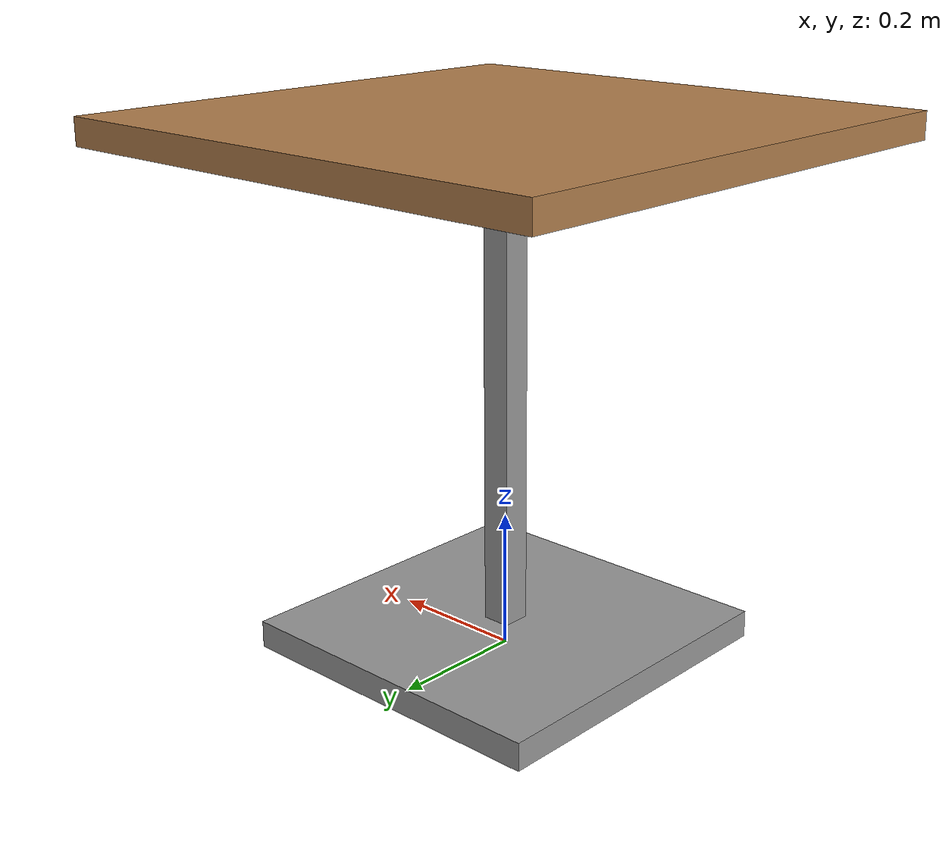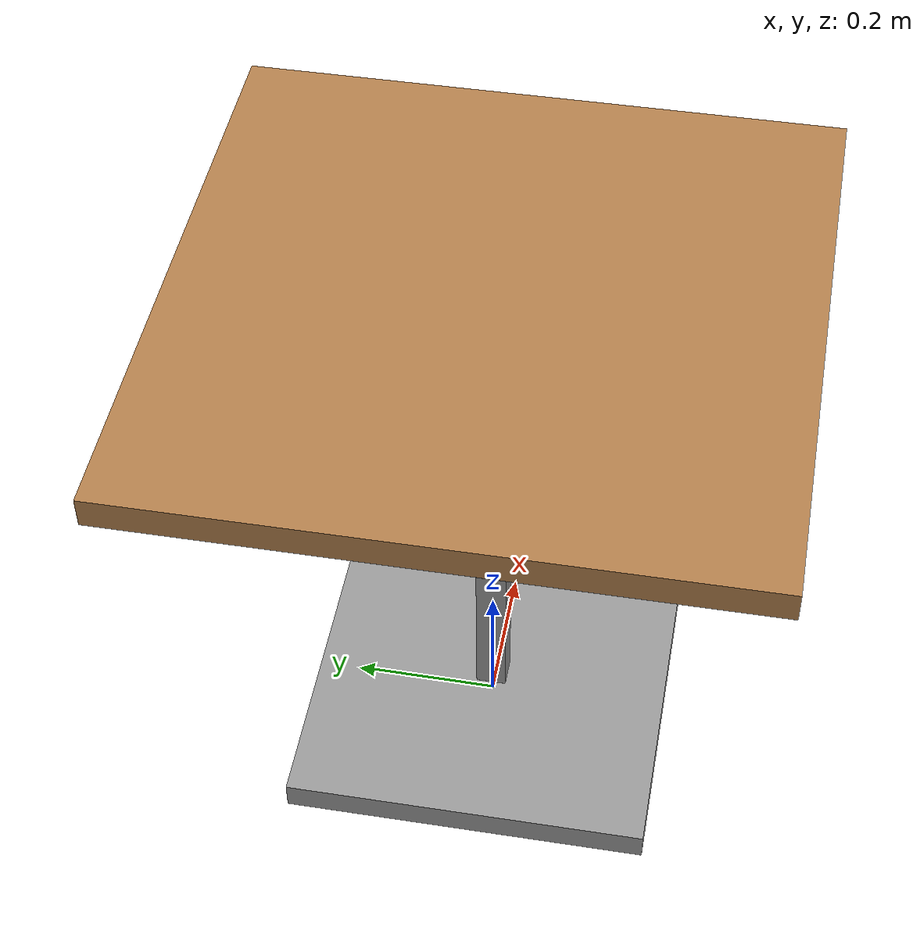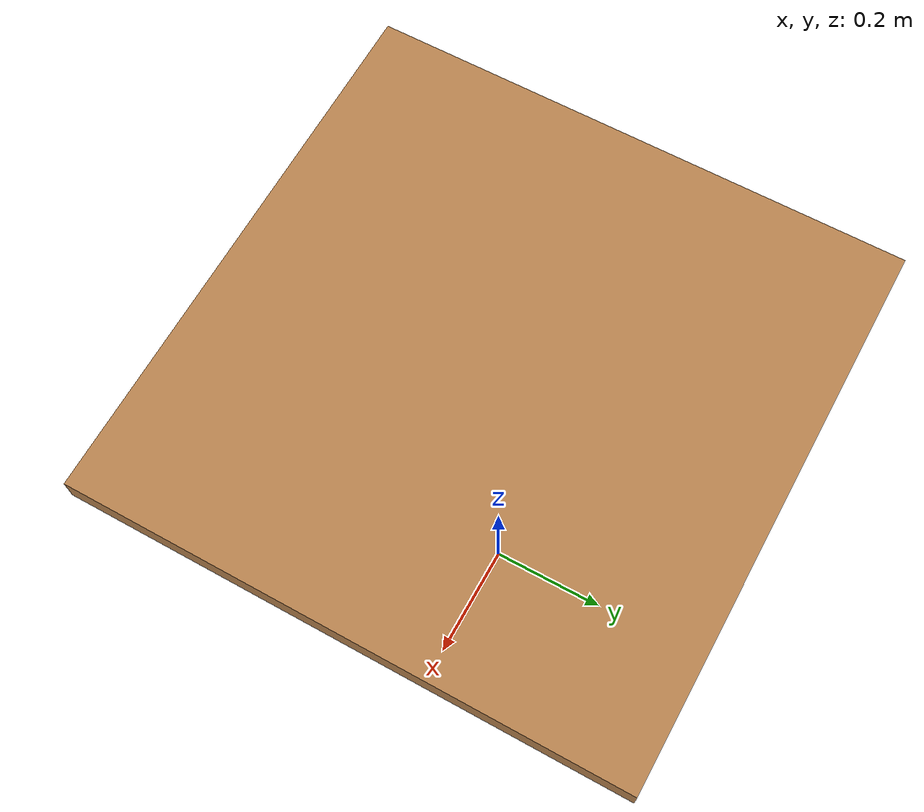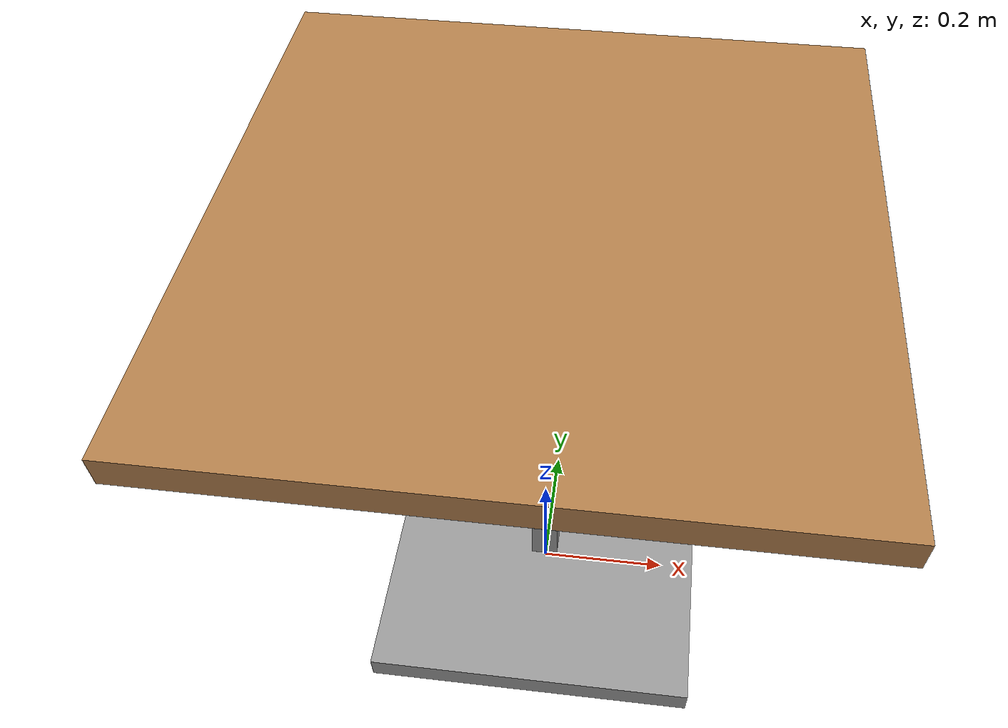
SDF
<?xml version="1.0" ?>
<sdf version="1.4">
  <model name="cafe_table">
    <static>true</static>
    <link name="link">
      <collision name="surface">
        <pose>0 0 0.755 0 0 0</pose>
        <geometry>
          <box>
            <size>0.8 0.8 0.04</size>
          </box>
        </geometry>
        <surface>
          <friction>
            <ode>
              <mu>0.2</mu>
              <mu2>0.2</mu2>
            </ode>
          </friction>
        </surface>
      </collision>
      <visual name="surface">
        <pose>0 0 0.755 0 0 0</pose>
        <geometry>
          <box>
            <size>0.8 0.8 0.04</size>
          </box>
        </geometry>
        <material>
          <script>
            <uri>file://media/materials/scripts/gazebo.material</uri>
            <name>Gazebo/Wood</name>
          </script>
        </material>
      </visual>

      <collision name="column">
        <pose>0 0 0.37 0 0 0</pose>
        <geometry>
          <box>
            <size>0.042 0.042 0.74</size>
          </box>
        </geometry>
      </collision>
      <visual name="column">
        <pose>0 0 0.37 0 0 0</pose>
        <geometry>
          <box>
            <size>0.042 0.042 0.74</size>
          </box>
        </geometry>
        <material>
          <script>
            <uri>file://media/materials/scripts/gazebo.material</uri>
            <name>Gazebo/Grey</name>
          </script>
        </material>
      </visual>

      <collision name="base">
        <pose>0 0 0.02 0 0 0</pose>
        <geometry>
          <box>
            <size>0.5 0.5 0.04</size>
          </box>
        </geometry>
      </collision>
      <visual name="base">
        <pose>0 0 0.02 0 0 0</pose>
        <geometry>
          <box>
            <size>0.5 0.5 0.04</size>
          </box>
        </geometry>
        <material>
          <script>
            <uri>file://media/materials/scripts/gazebo.material</uri>
            <name>Gazebo/Grey</name>
          </script>
        </material>
      </visual>

    </link>
  </model>
</sdf>
